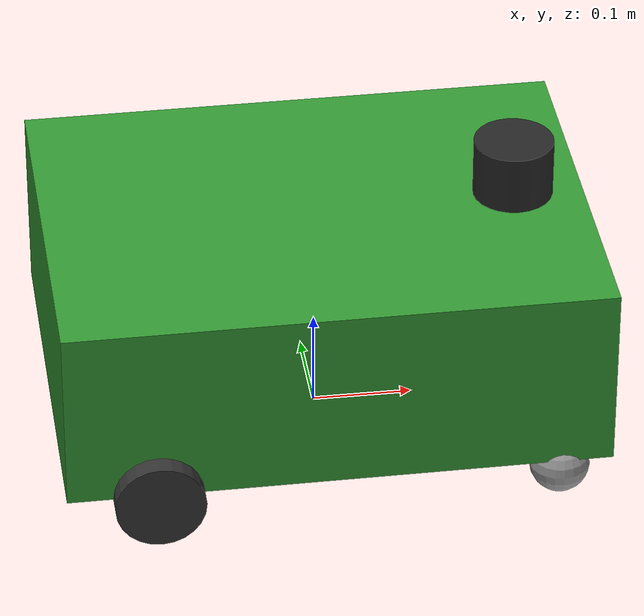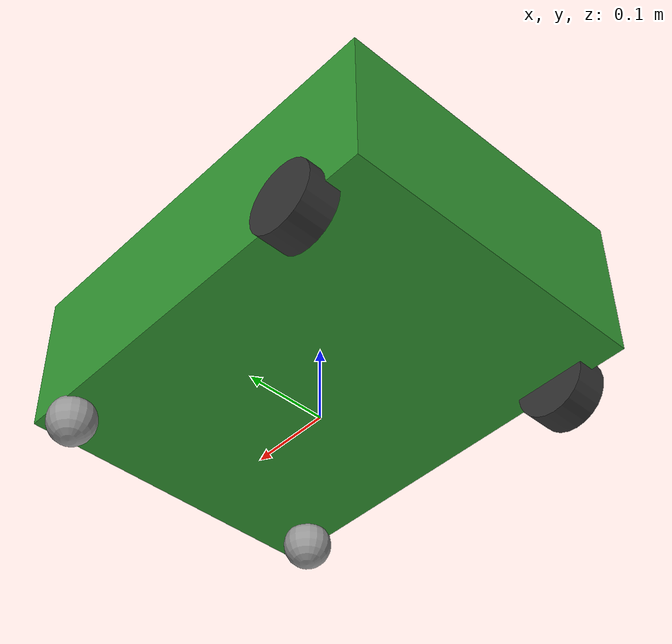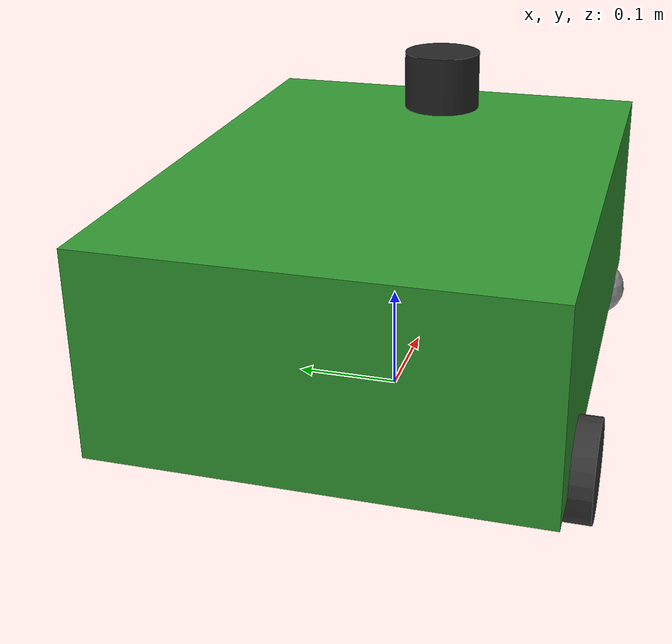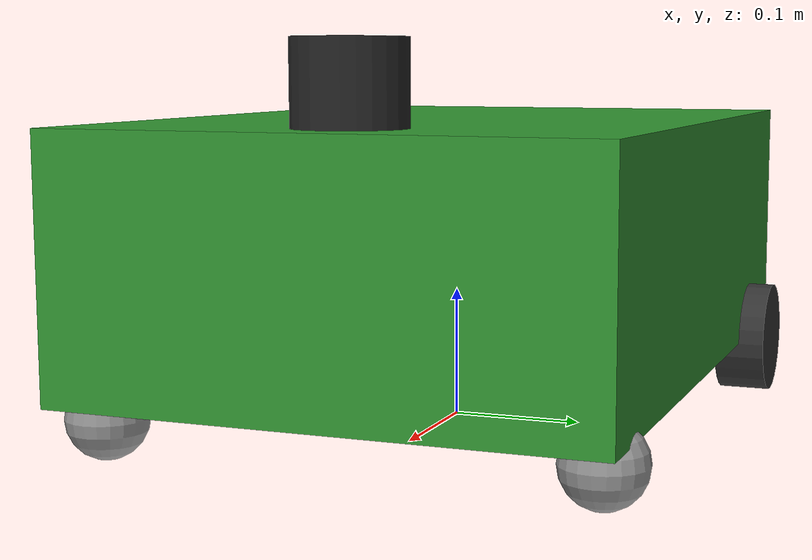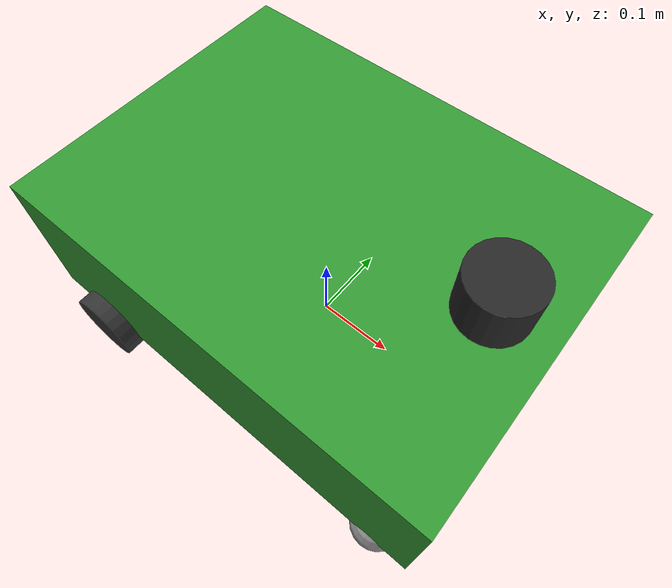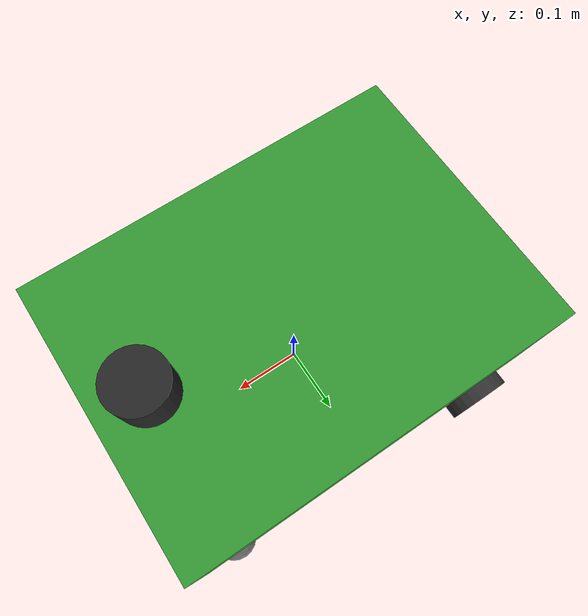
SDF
<?xml version="1.0"?>
<sdf version="1.9">
  <model name="mowgli_mower">
    <pose>0 0 0.04475 0 0 0</pose>

    <!-- ==============================================================
         BASE LINK — chassis body
         ============================================================== -->
    <link name="base_link">
      <inertial>
        <mass>8.76</mass>
        <!-- Box inertia: m/12 * (y^2+z^2), etc. for 0.54×0.40×0.19 -->
        <inertia>
          <ixx>0.1459</ixx>
          <ixy>0</ixy>
          <ixz>0</ixz>
          <iyy>0.2396</iyy>
          <iyz>0</iyz>
          <izz>0.3296</izz>
        </inertia>
      </inertial>

      <!-- Chassis visual — green
           visibility_flags 0x0001: invisible to LiDAR (mask 0xFFFF0000) -->
      <visual name="chassis_visual">
        <pose>0 0 0.095 0 0 0</pose>
        <geometry>
          <box><size>0.54 0.40 0.19</size></box>
        </geometry>
        <material>
          <ambient>0.18 0.55 0.18 1</ambient>
          <diffuse>0.20 0.60 0.20 1</diffuse>
          <specular>0.1 0.3 0.1 1</specular>
        </material>
        <visibility_flags>0x0001</visibility_flags>
      </visual>

      <!-- Chassis collision -->
      <collision name="chassis_collision">
        <pose>0 0 0.095 0 0 0</pose>
        <geometry>
          <box><size>0.54 0.40 0.19</size></box>
        </geometry>
        <surface>
          <friction>
            <ode><mu>0.6</mu><mu2>0.6</mu2></ode>
          </friction>
        </surface>
      </collision>

      <!-- IMU sensor embedded in base_link -->
      <sensor name="imu_sensor" type="imu">
        <pose>0 0 0.095 0 0 0</pose>
        <always_on>true</always_on>
        <update_rate>100</update_rate>
        <visualize>false</visualize>
        <topic>/imu/data_raw</topic>
        <!-- Match the URDF frame for EKF TF lookups -->
        <gz_frame_id>imu_link</gz_frame_id>
        <imu>
          <angular_velocity>
            <x>
              <noise type="gaussian">
                <mean>0.0</mean><stddev>0.009</stddev>
                <bias_mean>0.00075</bias_mean><bias_stddev>0.005</bias_stddev>
              </noise>
            </x>
            <y>
              <noise type="gaussian">
                <mean>0.0</mean><stddev>0.009</stddev>
                <bias_mean>0.00075</bias_mean><bias_stddev>0.005</bias_stddev>
              </noise>
            </y>
            <z>
              <noise type="gaussian">
                <mean>0.0</mean><stddev>0.009</stddev>
                <bias_mean>0.00075</bias_mean><bias_stddev>0.005</bias_stddev>
              </noise>
            </z>
          </angular_velocity>
          <linear_acceleration>
            <x>
              <noise type="gaussian">
                <mean>0.0</mean><stddev>0.021</stddev>
                <bias_mean>0.1</bias_mean><bias_stddev>0.001</bias_stddev>
              </noise>
            </x>
            <y>
              <noise type="gaussian">
                <mean>0.0</mean><stddev>0.021</stddev>
                <bias_mean>0.1</bias_mean><bias_stddev>0.001</bias_stddev>
              </noise>
            </y>
            <z>
              <noise type="gaussian">
                <mean>0.0</mean><stddev>0.021</stddev>
                <bias_mean>0.1</bias_mean><bias_stddev>0.001</bias_stddev>
              </noise>
            </z>
          </linear_acceleration>
          <orientation_reference_frame>
            <localization>GRAV_UP</localization>
          </orientation_reference_frame>
        </imu>
      </sensor>

      <!-- GPS / NavSat sensor -->
      <sensor name="navsat_sensor" type="navsat">
        <pose>0 0 0.20 0 0 0</pose>
        <always_on>true</always_on>
        <update_rate>5</update_rate>
        <topic>/gps/fix</topic>
        <!-- Match production frame for GPS pose processing -->
        <gz_frame_id>gps_link</gz_frame_id>
        <navsat>
          <position_sensing>
            <horizontal>
              <noise type="gaussian">
                <!-- RTK-fixed: ~2cm accuracy → ~1.8e-7 degrees -->
                <mean>0.0</mean><stddev>0.0000002</stddev>
              </noise>
            </horizontal>
            <vertical>
              <noise type="gaussian">
                <mean>0.0</mean><stddev>0.05</stddev>
              </noise>
            </vertical>
          </position_sensing>
        </navsat>
      </sensor>
    </link>

    <link name="left_wheel">
      <pose>-0.18 0.20 0 -1.5708 0 0</pose>
      <inertial>
        <mass>0.5</mass>
        <!-- Cylinder axis along z (after rotation): ixx=iyy=m/12*(3r^2+h^2), izz=m/2*r^2 -->
        <inertia>
          <ixx>0.000317</ixx>
          <ixy>0</ixy>
          <ixz>0</ixz>
          <iyy>0.000317</iyy>
          <iyz>0</iyz>
          <izz>0.000501</izz>
        </inertia>
      </inertial>
      <visual name="visual">
        <geometry>
          <cylinder><radius>0.04475</radius><length>0.04</length></cylinder>
        </geometry>
        <material>
          <ambient>0.2 0.2 0.2 1</ambient>
          <diffuse>0.2 0.2 0.2 1</diffuse>
        </material>
        <visibility_flags>0x0001</visibility_flags>
      </visual>
      <collision name="collision">
        <geometry>
          <cylinder><radius>0.04475</radius><length>0.04</length></cylinder>
        </geometry>
        <surface>
          <friction>
            <ode>
              <mu>1.0</mu>
              <mu2>0.5</mu2>
              <fdir1>0 0 1</fdir1>
              <slip1>0.0</slip1>
              <slip2>0.0</slip2>
            </ode>
            <torsional>
              <ode><slip>0.0</slip></ode>
            </torsional>
          </friction>
          <contact>
            <ode>
              <kp>1000000.0</kp>
              <kd>100.0</kd>
              <max_vel>0.1</max_vel>
              <min_depth>0.001</min_depth>
            </ode>
          </contact>
        </surface>
      </collision>
    </link>

    <joint name="left_wheel_joint" type="revolute">
      <parent>base_link</parent>
      <child>left_wheel</child>
      <axis>
        <xyz>0 0 1</xyz>
        <dynamics><damping>0.1</damping><friction>0.1</friction></dynamics>
        <limit><lower>-1e+16</lower><upper>1e+16</upper></limit>
      </axis>
    </joint>

    <link name="right_wheel">
      <pose>-0.18 -0.20 0 1.5708 0 0</pose>
      <inertial>
        <mass>0.5</mass>
        <inertia>
          <ixx>0.000317</ixx>
          <ixy>0</ixy>
          <ixz>0</ixz>
          <iyy>0.000317</iyy>
          <iyz>0</iyz>
          <izz>0.000501</izz>
        </inertia>
      </inertial>
      <visual name="visual">
        <geometry>
          <cylinder><radius>0.04475</radius><length>0.04</length></cylinder>
        </geometry>
        <material>
          <ambient>0.2 0.2 0.2 1</ambient>
          <diffuse>0.2 0.2 0.2 1</diffuse>
        </material>
        <visibility_flags>0x0001</visibility_flags>
      </visual>
      <collision name="collision">
        <geometry>
          <cylinder><radius>0.04475</radius><length>0.04</length></cylinder>
        </geometry>
        <surface>
          <friction>
            <ode>
              <mu>1.0</mu>
              <mu2>0.5</mu2>
              <fdir1>0 0 1</fdir1>
              <slip1>0.0</slip1>
              <slip2>0.0</slip2>
            </ode>
            <torsional>
              <ode><slip>0.0</slip></ode>
            </torsional>
          </friction>
          <contact>
            <ode>
              <kp>1000000.0</kp>
              <kd>100.0</kd>
              <max_vel>0.1</max_vel>
              <min_depth>0.001</min_depth>
            </ode>
          </contact>
        </surface>
      </collision>
    </link>

    <joint name="right_wheel_joint" type="revolute">
      <parent>base_link</parent>
      <child>right_wheel</child>
      <axis>
        <xyz>0 0 -1</xyz>
        <dynamics><damping>0.1</damping><friction>0.1</friction></dynamics>
        <limit><lower>-1e+16</lower><upper>1e+16</upper></limit>
      </axis>
    </joint>

    <link name="front_left_caster">
      <pose>0.22 0.18 -0.01475 0 0 0</pose>
      <inertial>
        <mass>0.2</mass>
        <!-- Sphere: I = 2/5 * m * r^2 = 2/5 * 0.2 * 0.03^2 -->
        <inertia>
          <ixx>0.000072</ixx>
          <ixy>0</ixy>
          <ixz>0</ixz>
          <iyy>0.000072</iyy>
          <iyz>0</iyz>
          <izz>0.000072</izz>
        </inertia>
      </inertial>
      <visual name="visual">
        <geometry>
          <sphere><radius>0.03</radius></sphere>
        </geometry>
        <material>
          <ambient>0.5 0.5 0.5 1</ambient>
          <diffuse>0.6 0.6 0.6 1</diffuse>
        </material>
        <visibility_flags>0x0001</visibility_flags>
      </visual>
      <collision name="collision">
        <geometry>
          <sphere><radius>0.03</radius></sphere>
        </geometry>
        <surface>
          <friction>
            <ode>
              <mu>0.01</mu>
              <mu2>0.01</mu2>
            </ode>
          </friction>
          <contact>
            <ode>
              <kp>1000000.0</kp>
              <kd>100.0</kd>
              <max_vel>1.0</max_vel>
              <min_depth>0.001</min_depth>
            </ode>
          </contact>
        </surface>
      </collision>
    </link>

    <joint name="front_left_caster_joint" type="ball">
      <parent>base_link</parent>
      <child>front_left_caster</child>
    </joint>

    <link name="front_right_caster">
      <pose>0.22 -0.18 -0.01475 0 0 0</pose>
      <inertial>
        <mass>0.2</mass>
        <inertia>
          <ixx>0.000072</ixx>
          <ixy>0</ixy>
          <ixz>0</ixz>
          <iyy>0.000072</iyy>
          <iyz>0</iyz>
          <izz>0.000072</izz>
        </inertia>
      </inertial>
      <visual name="visual">
        <geometry>
          <sphere><radius>0.03</radius></sphere>
        </geometry>
        <material>
          <ambient>0.5 0.5 0.5 1</ambient>
          <diffuse>0.6 0.6 0.6 1</diffuse>
        </material>
        <visibility_flags>0x0001</visibility_flags>
      </visual>
      <collision name="collision">
        <geometry>
          <sphere><radius>0.03</radius></sphere>
        </geometry>
        <surface>
          <friction>
            <ode>
              <mu>0.01</mu>
              <mu2>0.01</mu2>
            </ode>
          </friction>
          <contact>
            <ode>
              <kp>1000000.0</kp>
              <kd>100.0</kd>
              <max_vel>1.0</max_vel>
              <min_depth>0.001</min_depth>
            </ode>
          </contact>
        </surface>
      </collision>
    </link>

    <joint name="front_right_caster_joint" type="ball">
      <parent>base_link</parent>
      <child>front_right_caster</child>
    </joint>

    <link name="blade_link">
      <pose>0 0 0.00525 0 0 0</pose>
      <inertial>
        <mass>0.3</mass>
        <inertia>
          <ixx>0.000610</ixx>
          <ixy>0</ixy>
          <ixz>0</ixz>
          <iyy>0.000610</iyy>
          <iyz>0</iyz>
          <izz>0.001215</izz>
        </inertia>
      </inertial>
      <visual name="visual">
        <geometry>
          <cylinder><radius>0.09</radius><length>0.01</length></cylinder>
        </geometry>
        <material>
          <ambient>0.75 0.75 0.75 1</ambient>
          <diffuse>0.80 0.80 0.80 1</diffuse>
          <specular>0.5 0.5 0.5 1</specular>
        </material>
        <visibility_flags>0x0001</visibility_flags>
      </visual>
      <!-- No collision — blade is virtual in simulation -->
    </link>

    <joint name="blade_joint" type="fixed">
      <parent>base_link</parent>
      <child>blade_link</child>
    </joint>

    <link name="laser_link">
      <pose>0.20 0 0.22 0 0 0</pose>
      <inertial>
        <mass>0.18</mass>
        <inertia>
          <ixx>0.0001</ixx><ixy>0</ixy><ixz>0</ixz>
          <iyy>0.0001</iyy><iyz>0</iyz><izz>0.0001</izz>
        </inertia>
      </inertial>
      <visual name="visual">
        <geometry>
          <cylinder><radius>0.04</radius><length>0.06</length></cylinder>
        </geometry>
        <material>
          <ambient>0.15 0.15 0.15 1</ambient>
          <diffuse>0.15 0.15 0.15 1</diffuse>
        </material>
        <visibility_flags>0x0001</visibility_flags>
      </visual>
      <collision name="collision">
        <geometry>
          <cylinder><radius>0.04</radius><length>0.06</length></cylinder>
        </geometry>
      </collision>

      <!-- 2-D LiDAR sensor — 360 deg, 720 samples, 10 Hz -->
      <sensor name="lidar_sensor" type="gpu_lidar">
        <always_on>true</always_on>
        <update_rate>10</update_rate>
        <visualize>false</visualize>
        <visibility_mask>0xFFFF0000</visibility_mask>
        <topic>/scan</topic>
        <!-- Match the URDF frame so SLAM/costmap TF lookups work -->
        <gz_frame_id>lidar_link</gz_frame_id>
        <lidar>
          <scan>
            <horizontal>
              <samples>720</samples>
              <resolution>1</resolution>
              <min_angle>-3.14159265</min_angle>
              <max_angle>3.14159265</max_angle>
            </horizontal>
            <vertical>
              <samples>1</samples>
              <resolution>1</resolution>
              <min_angle>0</min_angle>
              <max_angle>0</max_angle>
            </vertical>
          </scan>
          <range>
            <!-- Reduced from 0.35m: visibility_mask now filters self-reflections -->
            <min>0.10</min>
            <max>12.0</max>
            <resolution>0.01</resolution>
          </range>
          <noise>
            <type>gaussian</type>
            <mean>0.0</mean>
            <stddev>0.025</stddev>
          </noise>
        </lidar>
      </sensor>
    </link>

    <joint name="laser_joint" type="fixed">
      <parent>base_link</parent>
      <child>laser_link</child>
    </joint>

    <plugin
        filename="gz-sim-diff-drive-system"
        name="gz::sim::systems::DiffDrive">
      <left_joint>left_wheel_joint</left_joint>
      <right_joint>right_wheel_joint</right_joint>
      <wheel_separation>0.40</wheel_separation>
      <wheel_radius>0.04475</wheel_radius>
      <odom_publish_frequency>50</odom_publish_frequency>
      <topic>/cmd_vel</topic>
      <odom_topic>/odom</odom_topic>
      <tf_topic>/tf</tf_topic>
      <frame_id>odom</frame_id>
      <child_frame_id>base_link</child_frame_id>
      <min_velocity>-1.0</min_velocity>
      <max_velocity>1.0</max_velocity>
      <min_acceleration>-3.0</min_acceleration>
      <max_acceleration>3.0</max_acceleration>
    </plugin>

    <!-- Joint state publisher — broadcasts wheel joint positions -->
    <plugin
        filename="gz-sim-joint-state-publisher-system"
        name="gz::sim::systems::JointStatePublisher">
      <topic>/joint_states</topic>
      <joint_name>left_wheel_joint</joint_name>
      <joint_name>right_wheel_joint</joint_name>
    </plugin>

  </model>
</sdf>
